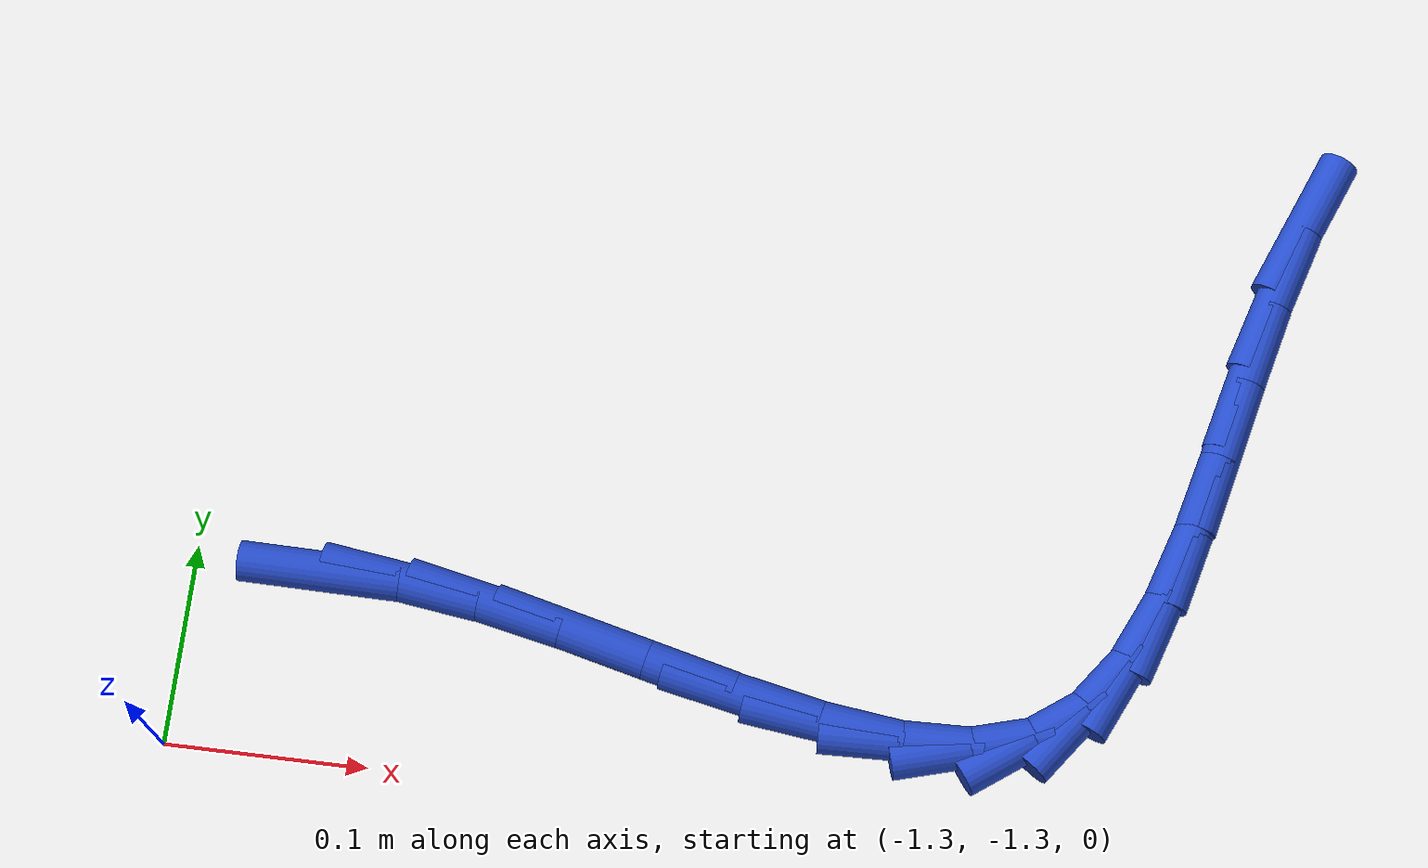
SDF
<sdf version="1.6">
 <world name="default">
  <model name="ground_plane">
   <static>1</static>
   <link name="link">
    <collision name="collision">
     <geometry><plane><normal>0 0 1</normal><size>100 100</size></plane></geometry>
     <surface><friction><ode><mu>100</mu><mu2>50</mu2></ode></friction></surface>
    </collision>
    <visual name="visual">
     <cast_shadows>0</cast_shadows>
     <geometry><plane><normal>0 0 1</normal><size>100 100</size></plane></geometry>
     <material>
      <script><uri>file://media/materials/scripts/gazebo.material</uri><name>Gazebo/WhiteGlow</name></script>
     </material>
    </visual>
   </link>
  </model>
  <model name="line">
   <link name="link_158">
    <pose>-1.2365072691620782 -1.2074656053811736 0.01 0 1.57 -0.015216065472645488</pose>
    <collision name="collision">
     <geometry><cylinder><radius>0.01</radius><length>0.08</length></cylinder></geometry>
    </collision>
    <visual name="visual">
     <material>
      <script><name>Gazebo/Blue</name><uri>file://media/materials/scripts/gazebo.material</uri></script>
     </material>
     <geometry><cylinder><radius>0.01</radius><length>0.08</length></cylinder></geometry>
    </visual>
   </link>
   <link name="link_159">
    <pose>-1.196463891855347 -1.2080749550600471 0.01 0 1.57 -0.13593450913328123</pose>
    <collision name="collision">
     <geometry><cylinder><radius>0.01</radius><length>0.08</length></cylinder></geometry>
    </collision>
    <visual name="visual">
     <material>
      <script><name>Gazebo/Blue</name><uri>file://media/materials/scripts/gazebo.material</uri></script>
     </material>
     <geometry><cylinder><radius>0.01</radius><length>0.08</length></cylinder></geometry>
    </visual>
   </link>
   <link name="link_160">
    <pose>-1.1541947368595689 -1.2138564463406725 0.01 0 1.57 -0.2076657151716173</pose>
    <collision name="collision">
     <geometry><cylinder><radius>0.01</radius><length>0.08</length></cylinder></geometry>
    </collision>
    <visual name="visual">
     <material>
      <script><name>Gazebo/Blue</name><uri>file://media/materials/scripts/gazebo.material</uri></script>
     </material>
     <geometry><cylinder><radius>0.01</radius><length>0.08</length></cylinder></geometry>
    </visual>
   </link>
   <link name="link_161">
    <pose>-1.1107202884402945 -1.2230166570799315 0.01 0 1.57 -0.2413255556037591</pose>
    <collision name="collision">
     <geometry><cylinder><radius>0.01</radius><length>0.08</length></cylinder></geometry>
    </collision>
    <visual name="visual">
     <material>
      <script><name>Gazebo/Blue</name><uri>file://media/materials/scripts/gazebo.material</uri></script>
     </material>
     <geometry><cylinder><radius>0.01</radius><length>0.08</length></cylinder></geometry>
    </visual>
   </link>
   <link name="link_162">
    <pose>-1.0670610308630746 -1.2337621651347066 0.01 0 1.57 -0.24127168340435232</pose>
    <collision name="collision">
     <geometry><cylinder><radius>0.01</radius><length>0.08</length></cylinder></geometry>
    </collision>
    <visual name="visual">
     <material>
      <script><name>Gazebo/Blue</name><uri>file://media/materials/scripts/gazebo.material</uri></script>
     </material>
     <geometry><cylinder><radius>0.01</radius><length>0.08</length></cylinder></geometry>
    </visual>
   </link>
   <link name="link_163">
    <pose>-1.0242374483934593 -1.2442995483618795 0.01 0 1.57 -0.2054177644039112</pose>
    <collision name="collision">
     <geometry><cylinder><radius>0.01</radius><length>0.08</length></cylinder></geometry>
    </collision>
    <visual name="visual">
     <material>
      <script><name>Gazebo/Blue</name><uri>file://media/materials/scripts/gazebo.material</uri></script>
     </material>
     <geometry><cylinder><radius>0.01</radius><length>0.08</length></cylinder></geometry>
    </visual>
   </link>
   <link name="link_164">
    <pose>-0.9832700252969986 -1.2528353846183329 0.01 0 1.57 -0.12382556088470571</pose>
    <collision name="collision">
     <geometry><cylinder><radius>0.01</radius><length>0.08</length></cylinder></geometry>
    </collision>
    <visual name="visual">
     <material>
      <script><name>Gazebo/Blue</name><uri>file://media/materials/scripts/gazebo.material</uri></script>
     </material>
     <geometry><cylinder><radius>0.01</radius><length>0.08</length></cylinder></geometry>
    </visual>
   </link>
   <link name="link_165">
    <pose>-0.9451792458392447 -1.2575762517609481 0.01 0 1.57 0.024780933946974473</pose>
    <collision name="collision">
     <geometry><cylinder><radius>0.01</radius><length>0.08</length></cylinder></geometry>
    </collision>
    <visual name="visual">
     <material>
      <script><name>Gazebo/Blue</name><uri>file://media/materials/scripts/gazebo.material</uri></script>
     </material>
     <geometry><cylinder><radius>0.01</radius><length>0.08</length></cylinder></geometry>
    </visual>
   </link>
   <link name="link_166">
    <pose>-0.9109855942857472 -1.2567287276466068 0.01 0 1.57 0.27402346617552903</pose>
    <collision name="collision">
     <geometry><cylinder><radius>0.01</radius><length>0.08</length></cylinder></geometry>
    </collision>
    <visual name="visual">
     <material>
      <script><name>Gazebo/Blue</name><uri>file://media/materials/scripts/gazebo.material</uri></script>
     </material>
     <geometry><cylinder><radius>0.01</radius><length>0.08</length></cylinder></geometry>
    </visual>
   </link>
   <link name="link_167">
    <pose>-0.8817095549020567 -1.2484993901321928 0.01 0 1.57 0.6272378902342407</pose>
    <collision name="collision">
     <geometry><cylinder><radius>0.01</radius><length>0.08</length></cylinder></geometry>
    </collision>
    <visual name="visual">
     <material>
      <script><name>Gazebo/Blue</name><uri>file://media/materials/scripts/gazebo.material</uri></script>
     </material>
     <geometry><cylinder><radius>0.01</radius><length>0.08</length></cylinder></geometry>
    </visual>
   </link>
   <link name="link_168">
    <pose>-0.8581566090219508 -1.2314260304010318 0.01 0 1.57 0.9395143249145137</pose>
    <collision name="collision">
     <geometry><cylinder><radius>0.01</radius><length>0.08</length></cylinder></geometry>
    </collision>
    <visual name="visual">
     <material>
      <script><name>Gazebo/Blue</name><uri>file://media/materials/scripts/gazebo.material</uri></script>
     </material>
     <geometry><cylinder><radius>0.01</radius><length>0.08</length></cylinder></geometry>
    </visual>
   </link>
   <link name="link_169">
    <pose>-0.8397249123373035 -1.2062144333628726 0.01 0 1.57 1.1432154914722679</pose>
    <collision name="collision">
     <geometry><cylinder><radius>0.01</radius><length>0.08</length></cylinder></geometry>
    </collision>
    <visual name="visual">
     <material>
      <script><name>Gazebo/Blue</name><uri>file://media/materials/scripts/gazebo.material</uri></script>
     </material>
     <geometry><cylinder><radius>0.01</radius><length>0.08</length></cylinder></geometry>
    </visual>
   </link>
   <link name="link_170">
    <pose>-0.8252465347280502 -1.1744424425700108 0.01 0 1.57 1.262727174178114</pose>
    <collision name="collision">
     <geometry><cylinder><radius>0.01</radius><length>0.08</length></cylinder></geometry>
    </collision>
    <visual name="visual">
     <material>
      <script><name>Gazebo/Blue</name><uri>file://media/materials/scripts/gazebo.material</uri></script>
     </material>
     <geometry><cylinder><radius>0.01</radius><length>0.08</length></cylinder></geometry>
    </visual>
   </link>
   <link name="link_171">
    <pose>-0.8135520021897501 -1.1376902799380337 0.01 0 1.57 1.3248302909592948</pose>
    <collision name="collision">
     <geometry><cylinder><radius>0.01</radius><length>0.08</length></cylinder></geometry>
    </collision>
    <visual name="visual">
     <material>
      <script><name>Gazebo/Blue</name><uri>file://media/materials/scripts/gazebo.material</uri></script>
     </material>
     <geometry><cylinder><radius>0.01</radius><length>0.08</length></cylinder></geometry>
    </visual>
   </link>
   <link name="link_172">
    <pose>-0.8034718407179614 -1.0975381673825257 0.01 0 1.57 1.3451411491506078</pose>
    <collision name="collision">
     <geometry><cylinder><radius>0.01</radius><length>0.08</length></cylinder></geometry>
    </collision>
    <visual name="visual">
     <material>
      <script><name>Gazebo/Blue</name><uri>file://media/materials/scripts/gazebo.material</uri></script>
     </material>
     <geometry><cylinder><radius>0.01</radius><length>0.08</length></cylinder></geometry>
    </visual>
   </link>
   <link name="link_173">
    <pose>-0.7938365763082431 -1.055566326819073 0.01 0 1.57 1.330125442414007</pose>
    <collision name="collision">
     <geometry><cylinder><radius>0.01</radius><length>0.08</length></cylinder></geometry>
    </collision>
    <visual name="visual">
     <material>
      <script><name>Gazebo/Blue</name><uri>file://media/materials/scripts/gazebo.material</uri></script>
     </material>
     <geometry><cylinder><radius>0.01</radius><length>0.08</length></cylinder></geometry>
    </visual>
   </link>
   <link name="link_174">
    <pose>-0.7834767349561534 -1.0133549801632609 0.01 0 1.57 1.2795033364746893</pose>
    <collision name="collision">
     <geometry><cylinder><radius>0.01</radius><length>0.08</length></cylinder></geometry>
    </collision>
    <visual name="visual">
     <material>
      <script><name>Gazebo/Blue</name><uri>file://media/materials/scripts/gazebo.material</uri></script>
     </material>
     <geometry><cylinder><radius>0.01</radius><length>0.08</length></cylinder></geometry>
    </visual>
   </link>
   <link name="link_175">
    <pose>-0.7712228426572513 -0.9724843493306748 0.01 0 1.57 1.187245195596479</pose>
    <collision name="collision">
     <geometry><cylinder><radius>0.01</radius><length>0.08</length></cylinder></geometry>
    </collision>
    <visual name="visual">
     <material>
      <script><name>Gazebo/Blue</name><uri>file://media/materials/scripts/gazebo.material</uri></script>
     </material>
     <geometry><cylinder><radius>0.01</radius><length>0.08</length></cylinder></geometry>
    </visual>
   </link>
  </model>
 </world>
</sdf>
